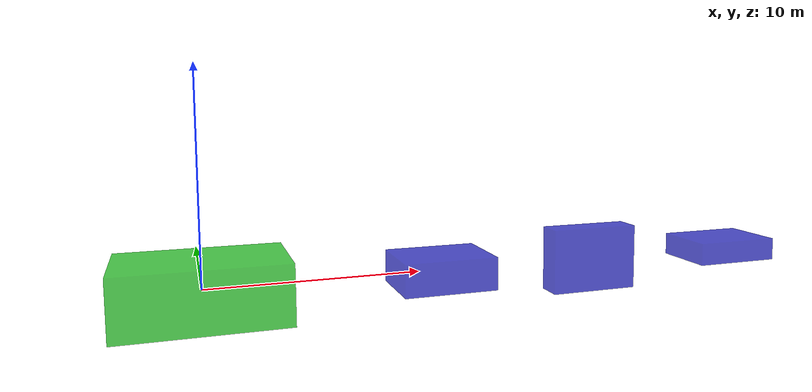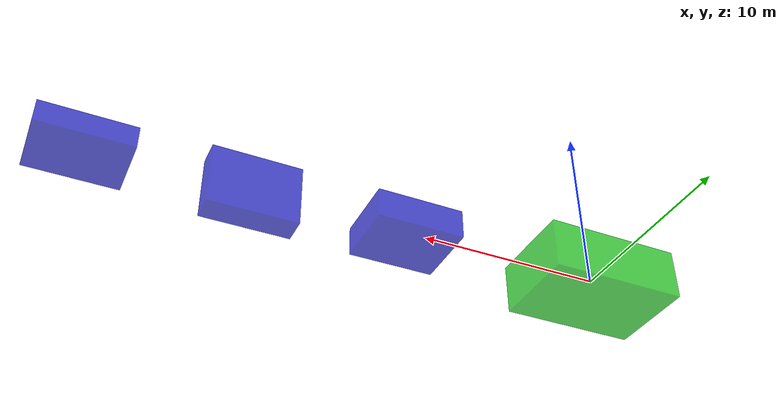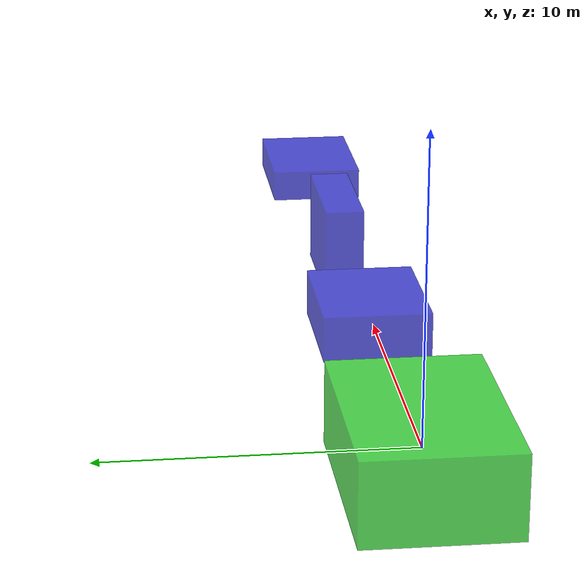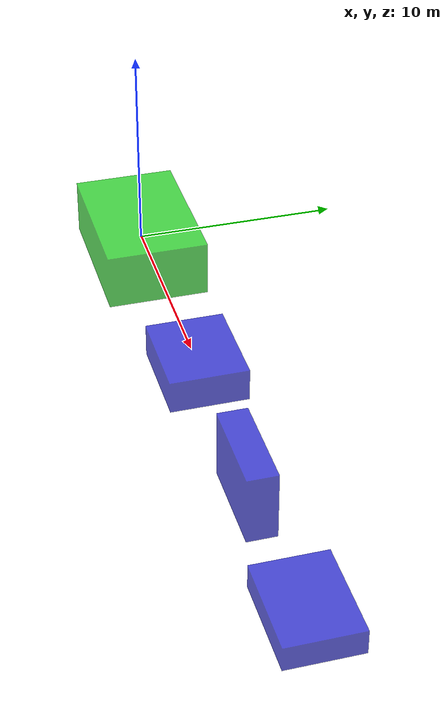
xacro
<?xml version="1.0"?>
<robot xmlns:xacro="http://www.ros.org/wiki/xacro" name="snake">
  <xacro:property name="baselen" value="7.5"/>
  <xacro:property name="baseheight" value="2.8"/>
  <xacro:property name="bodylen" value="4.6"/>
  <xacro:property name="joint_offset" value="0.5"/>

  <material name="blue">
    <color rgba="0 0 0.8 0.7"/>
  </material>

  <material name="green">
    <color rgba="0 0.8 0 0.7"/>
  </material>

  <link name="base">
    <visual>
      <geometry>
        <box size="${baselen} 5 ${baseheight}"/>
      </geometry>
      <material name="green"/>
    </visual>
  </link>

  <!-- First chain -->
  <joint name="body1_to_base" type="revolute">
    <parent link="base"/>
    <child link="body1"/>
    <origin rpy="0 0 0" xyz="${baselen-joint_offset} 0 0"/>
    <axis xyz="0 1 0"/>
    <limit lower="${-pi/2}" upper="${pi/2}" effort="100" velocity="5"/>
  </joint>

  <link name="body1">
    <visual>
      <geometry>
        <box size="${bodylen} 3.7 1.6"/>
      </geometry>
      <origin rpy="0 0 0" xyz="${bodylen-joint_offset} 0 0"/>
      <material name="blue"/>
    </visual>
  </link>

  <joint name="body2_to_body1" type="revolute">
    <parent link="body1"/>
    <child link="body2"/>
    <origin rpy="0 0 0" xyz="${bodylen*2-joint_offset*2} 0 0"/>
    <axis xyz="0 0 1"/>
    <limit lower="${-pi/2}" upper="${pi/2}" effort="100" velocity="5"/>
  </joint>

  <link name="body2">
    <visual>
      <geometry>
        <box size="${bodylen} 1.4 3.3"/>
      </geometry>
      <origin rpy="0 0 0" xyz="${bodylen-joint_offset} 0 0"/>
      <material name="blue"/>
    </visual>
  </link>

  <joint name="body3_to_body2" type="revolute">
    <parent link="body2"/>
    <child link="body3"/>
    <origin rpy="0 0 0" xyz="${bodylen*2-joint_offset*2} 0 0"/>
    <axis xyz="0 1 0"/>
    <limit lower="${-pi/2}" upper="${pi/2}" effort="100" velocity="5"/>
  </joint>

  <link name="body3">
    <visual>
      <geometry>
        <box size="${bodylen} 3.4 1.16"/>
      </geometry>
      <origin rpy="0 0 0" xyz="${bodylen-joint_offset} 0 0"/>
      <material name="blue"/>
    </visual>
  </link>

</robot>
